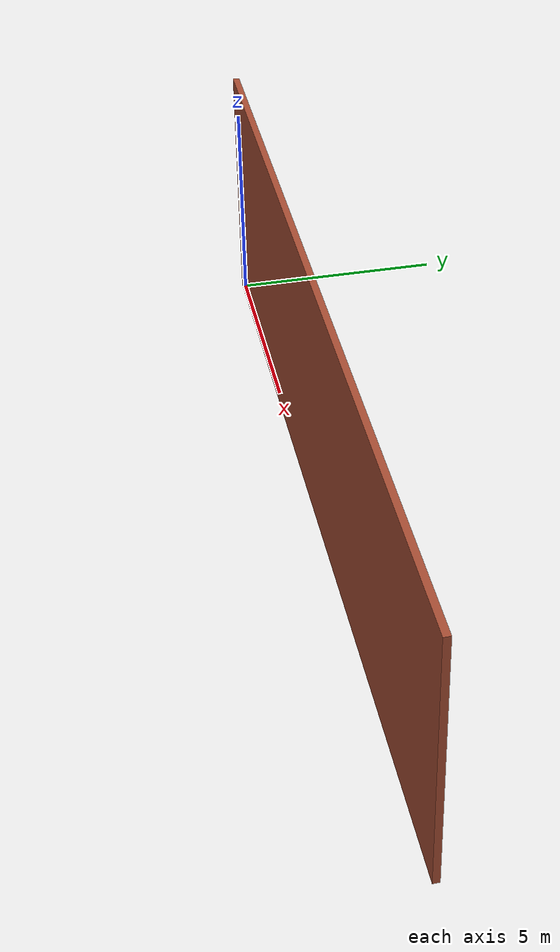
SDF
<?xml version='1.0'?>
<sdf version='1.7'>
  <model name='e_wall_1'>
    <pose>10 0 0 0 -0 0</pose>
    <link name='Wall_6'>
      <collision name='Wall_6_Collision'>
        <geometry>
          <box>
            <size>20.15 0.15 6</size>
          </box>
        </geometry>
        <pose>0 0 3 0 -0 0</pose>
      </collision>
      <visual name='Wall_6_Visual'>
        <pose>0 0 3 0 -0 0</pose>
        <geometry>
          <box>
            <size>20.15 0.15 6</size>
          </box>
        </geometry>
        <material>
          <script>
            <uri>model://e_wall_1/scripts</uri>
            <name>Bricks3_7</name>
          </script>
          <ambient>1 1 1 1</ambient>
        </material>
        <meta>
          <layer>0</layer>
        </meta>
      </visual>
      <pose>-0 0 0 0 -0 0</pose>
    </link>
    <static>1</static>
  </model>
</sdf>
